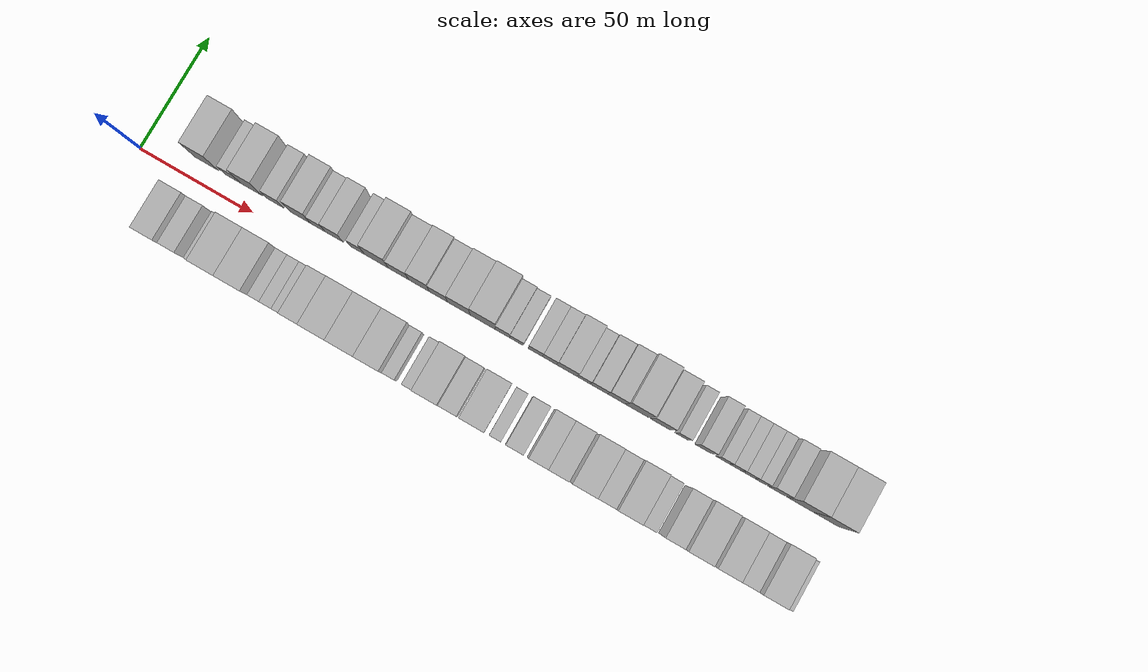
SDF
<sdf version="1.6">
 <world name="default">
  <scene>
   <sky><clouds><speed>12</speed></clouds></sky>
   <ambient>0.4 0.4 0.4 1</ambient>
   <background>0.7 0.7 0.7 1</background>
   <shadows>1</shadows>
  </scene>
  <gravity>0 0 -9.8066</gravity>
  <magnetic_field>6e-06 2.3e-05 -4.2e-05</magnetic_field>
  <physics default="0" name="default_physics" type="ode">
   <ode>
    <solver>
     <type>quick</type>
     <iters>10</iters>
     <sor>1.0</sor>
     <use_dynamic_moi_rescaling>0</use_dynamic_moi_rescaling>
    </solver>
    <constraints>
     <cfm>0</cfm>
     <erp>0.2</erp>
     <contact_max_correcting_vel>100</contact_max_correcting_vel>
     <contact_surface_layer>0.001</contact_surface_layer>
    </constraints>
   </ode>
   <max_step_size>0.004</max_step_size>
   <real_time_factor>1</real_time_factor>
   <real_time_update_rate>250</real_time_update_rate>
  </physics>
  <light name="sun" type="directional">
   <pose>0 0 10 0 0 0</pose>
   <diffuse>0.8 0.8 0.8 1</diffuse>
   <specular>0.2 0.2 0.2 1</specular>
   <attenuation>
    <range>1000</range>
    <constant>0.9</constant>
    <linear>0.01</linear>
    <quadratic>0.001</quadratic>
   </attenuation>
   <direction>-0.5 0.1 -0.9</direction>
  </light>
  <model name="building_1">
   <static>1</static>
   <pose>25.2201 17.5000 0 0.000000 0.000000 1.570796</pose>
   <link name="link">
    <pose>0 0 12.00 0 0 0</pose>
    <collision name="collision"><geometry><box><size>20.0000 10.4401 24.0000</size></box></geometry></collision>
    <visual name="visual">
     <cast_shadows>0</cast_shadows>
     <geometry><box><size>20.0000 10.4401 24.0000</size></box></geometry>
     <material>
      <script>
       <uri>model://HANNAS_wall/materials/scripts</uri>
       <uri>model://HANNAS_wall/materials/textures</uri>
       <name>vrc/HANNAS_wall</name>
      </script>
     </material>
    </visual>
   </link>
  </model>
  <model name="building_2">
   <static>1</static>
   <pose>36.8462 17.5000 0 0.000000 0.000000 1.570796</pose>
   <link name="link">
    <pose>0 0 7.50 0 0 0</pose>
    <collision name="collision"><geometry><box><size>20.0000 6.8121 15.0000</size></box></geometry></collision>
    <visual name="visual">
     <cast_shadows>0</cast_shadows>
     <geometry><box><size>20.0000 6.8121 15.0000</size></box></geometry>
     <material>
      <script>
       <uri>model://HANNAS_wall/materials/scripts</uri>
       <uri>model://HANNAS_wall/materials/textures</uri>
       <name>vrc/HANNAS_wall</name>
      </script>
     </material>
    </visual>
   </link>
  </model>
  <model name="building_3">
   <static>1</static>
   <pose>45.0765 17.5000 0 0.000000 0.000000 1.570796</pose>
   <link name="link">
    <pose>0 0 12.00 0 0 0</pose>
    <collision name="collision"><geometry><box><size>20.0000 9.6486 24.0000</size></box></geometry></collision>
    <visual name="visual">
     <cast_shadows>0</cast_shadows>
     <geometry><box><size>20.0000 9.6486 24.0000</size></box></geometry>
     <material>
      <script>
       <uri>model://HANNAS_wall/materials/scripts</uri>
       <uri>model://HANNAS_wall/materials/textures</uri>
       <name>vrc/HANNAS_wall</name>
      </script>
     </material>
    </visual>
   </link>
  </model>
  <model name="building_4">
   <static>1</static>
   <pose>55.5074 17.5000 0 0.000000 0.000000 1.570796</pose>
   <link name="link">
    <pose>0 0 7.50 0 0 0</pose>
    <collision name="collision"><geometry><box><size>20.0000 7.2132 15.0000</size></box></geometry></collision>
    <visual name="visual">
     <cast_shadows>0</cast_shadows>
     <geometry><box><size>20.0000 7.2132 15.0000</size></box></geometry>
     <material>
      <script>
       <uri>model://HANNAS_wall/materials/scripts</uri>
       <uri>model://HANNAS_wall/materials/textures</uri>
       <name>vrc/HANNAS_wall</name>
      </script>
     </material>
    </visual>
   </link>
  </model>
  <model name="building_5">
   <static>1</static>
   <pose>66.7522 17.5000 0 0.000000 0.000000 1.570796</pose>
   <link name="link">
    <pose>0 0 10.50 0 0 0</pose>
    <collision name="collision"><geometry><box><size>20.0000 9.2763 21.0000</size></box></geometry></collision>
    <visual name="visual">
     <cast_shadows>0</cast_shadows>
     <geometry><box><size>20.0000 9.2763 21.0000</size></box></geometry>
     <material>
      <script>
       <uri>model://HANNAS_wall/materials/scripts</uri>
       <uri>model://HANNAS_wall/materials/textures</uri>
       <name>vrc/HANNAS_wall</name>
      </script>
     </material>
    </visual>
   </link>
  </model>
  <model name="building_6">
   <static>1</static>
   <pose>74.5085 17.5000 0 0.000000 0.000000 1.570796</pose>
   <link name="link">
    <pose>0 0 7.50 0 0 0</pose>
    <collision name="collision"><geometry><box><size>20.0000 6.2364 15.0000</size></box></geometry></collision>
    <visual name="visual">
     <cast_shadows>0</cast_shadows>
     <geometry><box><size>20.0000 6.2364 15.0000</size></box></geometry>
     <material>
      <script>
       <uri>model://HANNAS_wall/materials/scripts</uri>
       <uri>model://HANNAS_wall/materials/textures</uri>
       <name>vrc/HANNAS_wall</name>
      </script>
     </material>
    </visual>
   </link>
  </model>
  <model name="building_7">
   <static>1</static>
   <pose>81.5345 17.5000 0 0.000000 0.000000 1.570796</pose>
   <link name="link">
    <pose>0 0 9.00 0 0 0</pose>
    <collision name="collision"><geometry><box><size>20.0000 7.8157 18.0000</size></box></geometry></collision>
    <visual name="visual">
     <cast_shadows>0</cast_shadows>
     <geometry><box><size>20.0000 7.8157 18.0000</size></box></geometry>
     <material>
      <script>
       <uri>model://HANNAS_wall/materials/scripts</uri>
       <uri>model://HANNAS_wall/materials/textures</uri>
       <name>vrc/HANNAS_wall</name>
      </script>
     </material>
    </visual>
   </link>
  </model>
  <model name="building_8">
   <static>1</static>
   <pose>91.6120 17.5000 0 0.000000 0.000000 1.570796</pose>
   <link name="link">
    <pose>0 0 7.50 0 0 0</pose>
    <collision name="collision"><geometry><box><size>20.0000 6.3393 15.0000</size></box></geometry></collision>
    <visual name="visual">
     <cast_shadows>0</cast_shadows>
     <geometry><box><size>20.0000 6.3393 15.0000</size></box></geometry>
     <material>
      <script>
       <uri>model://HANNAS_wall/materials/scripts</uri>
       <uri>model://HANNAS_wall/materials/textures</uri>
       <name>vrc/HANNAS_wall</name>
      </script>
     </material>
    </visual>
   </link>
  </model>
  <model name="building_9">
   <static>1</static>
   <pose>99.9844 17.5000 0 0.000000 0.000000 1.570796</pose>
   <link name="link">
    <pose>0 0 12.00 0 0 0</pose>
    <collision name="collision"><geometry><box><size>20.0000 10.4054 24.0000</size></box></geometry></collision>
    <visual name="visual">
     <cast_shadows>0</cast_shadows>
     <geometry><box><size>20.0000 10.4054 24.0000</size></box></geometry>
     <material>
      <script>
       <uri>model://HANNAS_wall/materials/scripts</uri>
       <uri>model://HANNAS_wall/materials/textures</uri>
       <name>vrc/HANNAS_wall</name>
      </script>
     </material>
    </visual>
   </link>
  </model>
  <model name="building_10">
   <static>1</static>
   <pose>109.5863 17.5000 0 0.000000 0.000000 1.570796</pose>
   <link name="link">
    <pose>0 0 9.00 0 0 0</pose>
    <collision name="collision"><geometry><box><size>20.0000 8.7986 18.0000</size></box></geometry></collision>
    <visual name="visual">
     <cast_shadows>0</cast_shadows>
     <geometry><box><size>20.0000 8.7986 18.0000</size></box></geometry>
     <material>
      <script>
       <uri>model://HANNAS_wall/materials/scripts</uri>
       <uri>model://HANNAS_wall/materials/textures</uri>
       <name>vrc/HANNAS_wall</name>
      </script>
     </material>
    </visual>
   </link>
  </model>
  <model name="building_11">
   <static>1</static>
   <pose>118.4237 17.5000 0 0.000000 0.000000 1.570796</pose>
   <link name="link">
    <pose>0 0 10.50 0 0 0</pose>
    <collision name="collision"><geometry><box><size>20.0000 8.8763 21.0000</size></box></geometry></collision>
    <visual name="visual">
     <cast_shadows>0</cast_shadows>
     <geometry><box><size>20.0000 8.8763 21.0000</size></box></geometry>
     <material>
      <script>
       <uri>model://HANNAS_wall/materials/scripts</uri>
       <uri>model://HANNAS_wall/materials/textures</uri>
       <name>vrc/HANNAS_wall</name>
      </script>
     </material>
    </visual>
   </link>
  </model>
  <model name="building_12">
   <static>1</static>
   <pose>126.8033 17.5000 0 0.000000 0.000000 1.570796</pose>
   <link name="link">
    <pose>0 0 9.00 0 0 0</pose>
    <collision name="collision"><geometry><box><size>20.0000 7.8829 18.0000</size></box></geometry></collision>
    <visual name="visual">
     <cast_shadows>0</cast_shadows>
     <geometry><box><size>20.0000 7.8829 18.0000</size></box></geometry>
     <material>
      <script>
       <uri>model://HANNAS_wall/materials/scripts</uri>
       <uri>model://HANNAS_wall/materials/textures</uri>
       <name>vrc/HANNAS_wall</name>
      </script>
     </material>
    </visual>
   </link>
  </model>
  <model name="building_13">
   <static>1</static>
   <pose>135.6129 17.5000 0 0.000000 0.000000 1.570796</pose>
   <link name="link">
    <pose>0 0 10.50 0 0 0</pose>
    <collision name="collision"><geometry><box><size>20.0000 9.7363 21.0000</size></box></geometry></collision>
    <visual name="visual">
     <cast_shadows>0</cast_shadows>
     <geometry><box><size>20.0000 9.7363 21.0000</size></box></geometry>
     <material>
      <script>
       <uri>model://HANNAS_wall/materials/scripts</uri>
       <uri>model://HANNAS_wall/materials/textures</uri>
       <name>vrc/HANNAS_wall</name>
      </script>
     </material>
    </visual>
   </link>
  </model>
  <model name="building_14">
   <static>1</static>
   <pose>145.8913 17.5000 0 0.000000 0.000000 1.570796</pose>
   <link name="link">
    <pose>0 0 12.00 0 0 0</pose>
    <collision name="collision"><geometry><box><size>20.0000 10.8204 24.0000</size></box></geometry></collision>
    <visual name="visual">
     <cast_shadows>0</cast_shadows>
     <geometry><box><size>20.0000 10.8204 24.0000</size></box></geometry>
     <material>
      <script>
       <uri>model://HANNAS_wall/materials/scripts</uri>
       <uri>model://HANNAS_wall/materials/textures</uri>
       <name>vrc/HANNAS_wall</name>
      </script>
     </material>
    </visual>
   </link>
  </model>
  <model name="building_15">
   <static>1</static>
   <pose>154.4302 17.5000 0 0.000000 0.000000 1.570796</pose>
   <link name="link">
    <pose>0 0 7.50 0 0 0</pose>
    <collision name="collision"><geometry><box><size>20.0000 6.2575 15.0000</size></box></geometry></collision>
    <visual name="visual">
     <cast_shadows>0</cast_shadows>
     <geometry><box><size>20.0000 6.2575 15.0000</size></box></geometry>
     <material>
      <script>
       <uri>model://HANNAS_wall/materials/scripts</uri>
       <uri>model://HANNAS_wall/materials/textures</uri>
       <name>vrc/HANNAS_wall</name>
      </script>
     </material>
    </visual>
   </link>
  </model>
  <model name="building_16">
   <static>1</static>
   <pose>160.4955 17.5000 0 0.000000 0.000000 1.570796</pose>
   <link name="link">
    <pose>0 0 6.00 0 0 0</pose>
    <collision name="collision"><geometry><box><size>20.0000 5.8731 12.0000</size></box></geometry></collision>
    <visual name="visual">
     <cast_shadows>0</cast_shadows>
     <geometry><box><size>20.0000 5.8731 12.0000</size></box></geometry>
     <material>
      <script>
       <uri>model://HANNAS_wall/materials/scripts</uri>
       <uri>model://HANNAS_wall/materials/textures</uri>
       <name>vrc/HANNAS_wall</name>
      </script>
     </material>
    </visual>
   </link>
  </model>
  <model name="building_17">
   <static>1</static>
   <pose>168.5329 17.5000 0 0.000000 0.000000 1.570796</pose>
   <link name="link">
    <pose>0 0 7.50 0 0 0</pose>
    <collision name="collision"><geometry><box><size>20.0000 6.2015 15.0000</size></box></geometry></collision>
    <visual name="visual">
     <cast_shadows>0</cast_shadows>
     <geometry><box><size>20.0000 6.2015 15.0000</size></box></geometry>
     <material>
      <script>
       <uri>model://HANNAS_wall/materials/scripts</uri>
       <uri>model://HANNAS_wall/materials/textures</uri>
       <name>vrc/HANNAS_wall</name>
      </script>
     </material>
    </visual>
   </link>
  </model>
  <model name="building_18">
   <static>1</static>
   <pose>174.6682 17.5000 0 0.000000 0.000000 1.570796</pose>
   <link name="link">
    <pose>0 0 7.50 0 0 0</pose>
    <collision name="collision"><geometry><box><size>20.0000 6.0692 15.0000</size></box></geometry></collision>
    <visual name="visual">
     <cast_shadows>0</cast_shadows>
     <geometry><box><size>20.0000 6.0692 15.0000</size></box></geometry>
     <material>
      <script>
       <uri>model://HANNAS_wall/materials/scripts</uri>
       <uri>model://HANNAS_wall/materials/textures</uri>
       <name>vrc/HANNAS_wall</name>
      </script>
     </material>
    </visual>
   </link>
  </model>
  <model name="building_19">
   <static>1</static>
   <pose>182.0090 17.5000 0 0.000000 0.000000 1.570796</pose>
   <link name="link">
    <pose>0 0 9.00 0 0 0</pose>
    <collision name="collision"><geometry><box><size>20.0000 8.6124 18.0000</size></box></geometry></collision>
    <visual name="visual">
     <cast_shadows>0</cast_shadows>
     <geometry><box><size>20.0000 8.6124 18.0000</size></box></geometry>
     <material>
      <script>
       <uri>model://HANNAS_wall/materials/scripts</uri>
       <uri>model://HANNAS_wall/materials/textures</uri>
       <name>vrc/HANNAS_wall</name>
      </script>
     </material>
    </visual>
   </link>
  </model>
  <model name="building_20">
   <static>1</static>
   <pose>189.1239 17.5000 0 0.000000 0.000000 1.570796</pose>
   <link name="link">
    <pose>0 0 6.00 0 0 0</pose>
    <collision name="collision"><geometry><box><size>20.0000 5.6175 12.0000</size></box></geometry></collision>
    <visual name="visual">
     <cast_shadows>0</cast_shadows>
     <geometry><box><size>20.0000 5.6175 12.0000</size></box></geometry>
     <material>
      <script>
       <uri>model://HANNAS_wall/materials/scripts</uri>
       <uri>model://HANNAS_wall/materials/textures</uri>
       <name>vrc/HANNAS_wall</name>
      </script>
     </material>
    </visual>
   </link>
  </model>
  <model name="building_21">
   <static>1</static>
   <pose>195.5637 17.5000 0 0.000000 0.000000 1.570796</pose>
   <link name="link">
    <pose>0 0 7.50 0 0 0</pose>
    <collision name="collision"><geometry><box><size>20.0000 7.2621 15.0000</size></box></geometry></collision>
    <visual name="visual">
     <cast_shadows>0</cast_shadows>
     <geometry><box><size>20.0000 7.2621 15.0000</size></box></geometry>
     <material>
      <script>
       <uri>model://HANNAS_wall/materials/scripts</uri>
       <uri>model://HANNAS_wall/materials/textures</uri>
       <name>vrc/HANNAS_wall</name>
      </script>
     </material>
    </visual>
   </link>
  </model>
  <model name="building_22">
   <static>1</static>
   <pose>203.0123 17.5000 0 0.000000 0.000000 1.570796</pose>
   <link name="link">
    <pose>0 0 9.00 0 0 0</pose>
    <collision name="collision"><geometry><box><size>20.0000 7.6352 18.0000</size></box></geometry></collision>
    <visual name="visual">
     <cast_shadows>0</cast_shadows>
     <geometry><box><size>20.0000 7.6352 18.0000</size></box></geometry>
     <material>
      <script>
       <uri>model://HANNAS_wall/materials/scripts</uri>
       <uri>model://HANNAS_wall/materials/textures</uri>
       <name>vrc/HANNAS_wall</name>
      </script>
     </material>
    </visual>
   </link>
  </model>
  <model name="building_23">
   <static>1</static>
   <pose>211.7698 17.5000 0 0.000000 0.000000 1.570796</pose>
   <link name="link">
    <pose>0 0 12.00 0 0 0</pose>
    <collision name="collision"><geometry><box><size>20.0000 9.8797 24.0000</size></box></geometry></collision>
    <visual name="visual">
     <cast_shadows>0</cast_shadows>
     <geometry><box><size>20.0000 9.8797 24.0000</size></box></geometry>
     <material>
      <script>
       <uri>model://HANNAS_wall/materials/scripts</uri>
       <uri>model://HANNAS_wall/materials/textures</uri>
       <name>vrc/HANNAS_wall</name>
      </script>
     </material>
    </visual>
   </link>
  </model>
  <model name="building_24">
   <static>1</static>
   <pose>221.9413 17.5000 0 0.000000 0.000000 1.570796</pose>
   <link name="link">
    <pose>0 0 9.00 0 0 0</pose>
    <collision name="collision"><geometry><box><size>20.0000 8.4632 18.0000</size></box></geometry></collision>
    <visual name="visual">
     <cast_shadows>0</cast_shadows>
     <geometry><box><size>20.0000 8.4632 18.0000</size></box></geometry>
     <material>
      <script>
       <uri>model://HANNAS_wall/materials/scripts</uri>
       <uri>model://HANNAS_wall/materials/textures</uri>
       <name>vrc/HANNAS_wall</name>
      </script>
     </material>
    </visual>
   </link>
  </model>
  <model name="building_25">
   <static>1</static>
   <pose>230.8725 17.5000 0 0.000000 0.000000 1.570796</pose>
   <link name="link">
    <pose>0 0 6.00 0 0 0</pose>
    <collision name="collision"><geometry><box><size>20.0000 5.3994 12.0000</size></box></geometry></collision>
    <visual name="visual">
     <cast_shadows>0</cast_shadows>
     <geometry><box><size>20.0000 5.3994 12.0000</size></box></geometry>
     <material>
      <script>
       <uri>model://HANNAS_wall/materials/scripts</uri>
       <uri>model://HANNAS_wall/materials/textures</uri>
       <name>vrc/HANNAS_wall</name>
      </script>
     </material>
    </visual>
   </link>
  </model>
  <model name="building_26">
   <static>1</static>
   <pose>240.0294 17.5000 0 0.000000 0.000000 1.570796</pose>
   <link name="link">
    <pose>0 0 7.50 0 0 0</pose>
    <collision name="collision"><geometry><box><size>20.0000 6.9145 15.0000</size></box></geometry></collision>
    <visual name="visual">
     <cast_shadows>0</cast_shadows>
     <geometry><box><size>20.0000 6.9145 15.0000</size></box></geometry>
     <material>
      <script>
       <uri>model://HANNAS_wall/materials/scripts</uri>
       <uri>model://HANNAS_wall/materials/textures</uri>
       <name>vrc/HANNAS_wall</name>
      </script>
     </material>
    </visual>
   </link>
  </model>
  <model name="building_27">
   <static>1</static>
   <pose>248.0906 17.5000 0 0.000000 0.000000 1.570796</pose>
   <link name="link">
    <pose>0 0 6.00 0 0 0</pose>
    <collision name="collision"><geometry><box><size>20.0000 5.2079 12.0000</size></box></geometry></collision>
    <visual name="visual">
     <cast_shadows>0</cast_shadows>
     <geometry><box><size>20.0000 5.2079 12.0000</size></box></geometry>
     <material>
      <script>
       <uri>model://HANNAS_wall/materials/scripts</uri>
       <uri>model://HANNAS_wall/materials/textures</uri>
       <name>vrc/HANNAS_wall</name>
      </script>
     </material>
    </visual>
   </link>
  </model>
  <model name="building_28">
   <static>1</static>
   <pose>253.2915 17.5000 0 0.000000 0.000000 1.570796</pose>
   <link name="link">
    <pose>0 0 6.00 0 0 0</pose>
    <collision name="collision"><geometry><box><size>20.0000 5.1938 12.0000</size></box></geometry></collision>
    <visual name="visual">
     <cast_shadows>0</cast_shadows>
     <geometry><box><size>20.0000 5.1938 12.0000</size></box></geometry>
     <material>
      <script>
       <uri>model://HANNAS_wall/materials/scripts</uri>
       <uri>model://HANNAS_wall/materials/textures</uri>
       <name>vrc/HANNAS_wall</name>
      </script>
     </material>
    </visual>
   </link>
  </model>
  <model name="building_29">
   <static>1</static>
   <pose>258.6236 17.5000 0 0.000000 0.000000 1.570796</pose>
   <link name="link">
    <pose>0 0 6.00 0 0 0</pose>
    <collision name="collision"><geometry><box><size>20.0000 5.4703 12.0000</size></box></geometry></collision>
    <visual name="visual">
     <cast_shadows>0</cast_shadows>
     <geometry><box><size>20.0000 5.4703 12.0000</size></box></geometry>
     <material>
      <script>
       <uri>model://HANNAS_wall/materials/scripts</uri>
       <uri>model://HANNAS_wall/materials/textures</uri>
       <name>vrc/HANNAS_wall</name>
      </script>
     </material>
    </visual>
   </link>
  </model>
  <model name="building_30">
   <static>1</static>
   <pose>263.7589 17.5000 0 0.000000 0.000000 1.570796</pose>
   <link name="link">
    <pose>0 0 6.00 0 0 0</pose>
    <collision name="collision"><geometry><box><size>20.0000 4.8003 12.0000</size></box></geometry></collision>
    <visual name="visual">
     <cast_shadows>0</cast_shadows>
     <geometry><box><size>20.0000 4.8003 12.0000</size></box></geometry>
     <material>
      <script>
       <uri>model://HANNAS_wall/materials/scripts</uri>
       <uri>model://HANNAS_wall/materials/textures</uri>
       <name>vrc/HANNAS_wall</name>
      </script>
     </material>
    </visual>
   </link>
  </model>
  <model name="building_31">
   <static>1</static>
   <pose>270.6630 17.5000 0 0.000000 0.000000 1.570796</pose>
   <link name="link">
    <pose>0 0 7.50 0 0 0</pose>
    <collision name="collision"><geometry><box><size>20.0000 7.0080 15.0000</size></box></geometry></collision>
    <visual name="visual">
     <cast_shadows>0</cast_shadows>
     <geometry><box><size>20.0000 7.0080 15.0000</size></box></geometry>
     <material>
      <script>
       <uri>model://HANNAS_wall/materials/scripts</uri>
       <uri>model://HANNAS_wall/materials/textures</uri>
       <name>vrc/HANNAS_wall</name>
      </script>
     </material>
    </visual>
   </link>
  </model>
  <model name="building_32">
   <static>1</static>
   <pose>280.6449 17.5000 0 0.000000 0.000000 1.570796</pose>
   <link name="link">
    <pose>0 0 12.00 0 0 0</pose>
    <collision name="collision"><geometry><box><size>20.0000 10.9557 24.0000</size></box></geometry></collision>
    <visual name="visual">
     <cast_shadows>0</cast_shadows>
     <geometry><box><size>20.0000 10.9557 24.0000</size></box></geometry>
     <material>
      <script>
       <uri>model://HANNAS_wall/materials/scripts</uri>
       <uri>model://HANNAS_wall/materials/textures</uri>
       <name>vrc/HANNAS_wall</name>
      </script>
     </material>
    </visual>
   </link>
  </model>
  <model name="building_33">
   <static>1</static>
   <pose>291.5715 17.5000 0 0.000000 0.000000 1.570796</pose>
   <link name="link">
    <pose>0 0 12.00 0 0 0</pose>
    <collision name="collision"><geometry><box><size>20.0000 10.8976 24.0000</size></box></geometry></collision>
    <visual name="visual">
     <cast_shadows>0</cast_shadows>
     <geometry><box><size>20.0000 10.8976 24.0000</size></box></geometry>
     <material>
      <script>
       <uri>model://HANNAS_wall/materials/scripts</uri>
       <uri>model://HANNAS_wall/materials/textures</uri>
       <name>vrc/HANNAS_wall</name>
      </script>
     </material>
    </visual>
   </link>
  </model>
  <model name="building_34">
   <static>1</static>
   <pose>24.7393 -17.5000 0 0.000000 0.000000 1.570796</pose>
   <link name="link">
    <pose>0 0 10.50 0 0 0</pose>
    <collision name="collision"><geometry><box><size>20.0000 9.4786 21.0000</size></box></geometry></collision>
    <visual name="visual">
     <cast_shadows>0</cast_shadows>
     <geometry><box><size>20.0000 9.4786 21.0000</size></box></geometry>
     <material>
      <script>
       <uri>model://HANNAS_wall/materials/scripts</uri>
       <uri>model://HANNAS_wall/materials/textures</uri>
       <name>vrc/HANNAS_wall</name>
      </script>
     </material>
    </visual>
   </link>
  </model>
  <model name="building_35">
   <static>1</static>
   <pose>33.1254 -17.5000 0 0.000000 0.000000 1.570796</pose>
   <link name="link">
    <pose>0 0 7.50 0 0 0</pose>
    <collision name="collision"><geometry><box><size>20.0000 7.2936 15.0000</size></box></geometry></collision>
    <visual name="visual">
     <cast_shadows>0</cast_shadows>
     <geometry><box><size>20.0000 7.2936 15.0000</size></box></geometry>
     <material>
      <script>
       <uri>model://HANNAS_wall/materials/scripts</uri>
       <uri>model://HANNAS_wall/materials/textures</uri>
       <name>vrc/HANNAS_wall</name>
      </script>
     </material>
    </visual>
   </link>
  </model>
  <model name="building_36">
   <static>1</static>
   <pose>42.2683 -17.5000 0 0.000000 0.000000 1.570796</pose>
   <link name="link">
    <pose>0 0 6.00 0 0 0</pose>
    <collision name="collision"><geometry><box><size>20.0000 4.9922 12.0000</size></box></geometry></collision>
    <visual name="visual">
     <cast_shadows>0</cast_shadows>
     <geometry><box><size>20.0000 4.9922 12.0000</size></box></geometry>
     <material>
      <script>
       <uri>model://HANNAS_wall/materials/scripts</uri>
       <uri>model://HANNAS_wall/materials/textures</uri>
       <name>vrc/HANNAS_wall</name>
      </script>
     </material>
    </visual>
   </link>
  </model>
  <model name="building_37">
   <static>1</static>
   <pose>50.3592 -17.5000 0 0.000000 0.000000 1.570796</pose>
   <link name="link">
    <pose>0 0 12.00 0 0 0</pose>
    <collision name="collision"><geometry><box><size>20.0000 11.1895 24.0000</size></box></geometry></collision>
    <visual name="visual">
     <cast_shadows>0</cast_shadows>
     <geometry><box><size>20.0000 11.1895 24.0000</size></box></geometry>
     <material>
      <script>
       <uri>model://HANNAS_wall/materials/scripts</uri>
       <uri>model://HANNAS_wall/materials/textures</uri>
       <name>vrc/HANNAS_wall</name>
      </script>
     </material>
    </visual>
   </link>
  </model>
  <model name="building_38">
   <static>1</static>
   <pose>61.4676 -17.5000 0 0.000000 0.000000 1.570796</pose>
   <link name="link">
    <pose>0 0 12.00 0 0 0</pose>
    <collision name="collision"><geometry><box><size>20.0000 11.0274 24.0000</size></box></geometry></collision>
    <visual name="visual">
     <cast_shadows>0</cast_shadows>
     <geometry><box><size>20.0000 11.0274 24.0000</size></box></geometry>
     <material>
      <script>
       <uri>model://HANNAS_wall/materials/scripts</uri>
       <uri>model://HANNAS_wall/materials/textures</uri>
       <name>vrc/HANNAS_wall</name>
      </script>
     </material>
    </visual>
   </link>
  </model>
  <model name="building_39">
   <static>1</static>
   <pose>69.5088 -17.5000 0 0.000000 0.000000 1.570796</pose>
   <link name="link">
    <pose>0 0 6.00 0 0 0</pose>
    <collision name="collision"><geometry><box><size>20.0000 5.0548 12.0000</size></box></geometry></collision>
    <visual name="visual">
     <cast_shadows>0</cast_shadows>
     <geometry><box><size>20.0000 5.0548 12.0000</size></box></geometry>
     <material>
      <script>
       <uri>model://HANNAS_wall/materials/scripts</uri>
       <uri>model://HANNAS_wall/materials/textures</uri>
       <name>vrc/HANNAS_wall</name>
      </script>
     </material>
    </visual>
   </link>
  </model>
  <model name="building_40">
   <static>1</static>
   <pose>74.6196 -17.5000 0 0.000000 0.000000 1.570796</pose>
   <link name="link">
    <pose>0 0 6.00 0 0 0</pose>
    <collision name="collision"><geometry><box><size>20.0000 5.1668 12.0000</size></box></geometry></collision>
    <visual name="visual">
     <cast_shadows>0</cast_shadows>
     <geometry><box><size>20.0000 5.1668 12.0000</size></box></geometry>
     <material>
      <script>
       <uri>model://HANNAS_wall/materials/scripts</uri>
       <uri>model://HANNAS_wall/materials/textures</uri>
       <name>vrc/HANNAS_wall</name>
      </script>
     </material>
    </visual>
   </link>
  </model>
  <model name="building_41">
   <static>1</static>
   <pose>79.6351 -17.5000 0 0.000000 0.000000 1.570796</pose>
   <link name="link">
    <pose>0 0 6.00 0 0 0</pose>
    <collision name="collision"><geometry><box><size>20.0000 4.8643 12.0000</size></box></geometry></collision>
    <visual name="visual">
     <cast_shadows>0</cast_shadows>
     <geometry><box><size>20.0000 4.8643 12.0000</size></box></geometry>
     <material>
      <script>
       <uri>model://HANNAS_wall/materials/scripts</uri>
       <uri>model://HANNAS_wall/materials/textures</uri>
       <name>vrc/HANNAS_wall</name>
      </script>
     </material>
    </visual>
   </link>
  </model>
  <model name="building_42">
   <static>1</static>
   <pose>86.3473 -17.5000 0 0.000000 0.000000 1.570796</pose>
   <link name="link">
    <pose>0 0 10.50 0 0 0</pose>
    <collision name="collision"><geometry><box><size>20.0000 8.5601 21.0000</size></box></geometry></collision>
    <visual name="visual">
     <cast_shadows>0</cast_shadows>
     <geometry><box><size>20.0000 8.5601 21.0000</size></box></geometry>
     <material>
      <script>
       <uri>model://HANNAS_wall/materials/scripts</uri>
       <uri>model://HANNAS_wall/materials/textures</uri>
       <name>vrc/HANNAS_wall</name>
      </script>
     </material>
    </visual>
   </link>
  </model>
  <model name="building_43">
   <static>1</static>
   <pose>96.2405 -17.5000 0 0.000000 0.000000 1.570796</pose>
   <link name="link">
    <pose>0 0 12.00 0 0 0</pose>
    <collision name="collision"><geometry><box><size>20.0000 11.2264 24.0000</size></box></geometry></collision>
    <visual name="visual">
     <cast_shadows>0</cast_shadows>
     <geometry><box><size>20.0000 11.2264 24.0000</size></box></geometry>
     <material>
      <script>
       <uri>model://HANNAS_wall/materials/scripts</uri>
       <uri>model://HANNAS_wall/materials/textures</uri>
       <name>vrc/HANNAS_wall</name>
      </script>
     </material>
    </visual>
   </link>
  </model>
  <model name="building_44">
   <static>1</static>
   <pose>107.6742 -17.5000 0 0.000000 0.000000 1.570796</pose>
   <link name="link">
    <pose>0 0 12.00 0 0 0</pose>
    <collision name="collision"><geometry><box><size>20.0000 11.6410 24.0000</size></box></geometry></collision>
    <visual name="visual">
     <cast_shadows>0</cast_shadows>
     <geometry><box><size>20.0000 11.6410 24.0000</size></box></geometry>
     <material>
      <script>
       <uri>model://HANNAS_wall/materials/scripts</uri>
       <uri>model://HANNAS_wall/materials/textures</uri>
       <name>vrc/HANNAS_wall</name>
      </script>
     </material>
    </visual>
   </link>
  </model>
  <model name="building_45">
   <static>1</static>
   <pose>118.7395 -17.5000 0 0.000000 0.000000 1.570796</pose>
   <link name="link">
    <pose>0 0 12.00 0 0 0</pose>
    <collision name="collision"><geometry><box><size>20.0000 10.4897 24.0000</size></box></geometry></collision>
    <visual name="visual">
     <cast_shadows>0</cast_shadows>
     <geometry><box><size>20.0000 10.4897 24.0000</size></box></geometry>
     <material>
      <script>
       <uri>model://HANNAS_wall/materials/scripts</uri>
       <uri>model://HANNAS_wall/materials/textures</uri>
       <name>vrc/HANNAS_wall</name>
      </script>
     </material>
    </visual>
   </link>
  </model>
  <model name="building_46">
   <static>1</static>
   <pose>126.6386 -17.5000 0 0.000000 0.000000 1.570796</pose>
   <link name="link">
    <pose>0 0 6.00 0 0 0</pose>
    <collision name="collision"><geometry><box><size>20.0000 5.3085 12.0000</size></box></geometry></collision>
    <visual name="visual">
     <cast_shadows>0</cast_shadows>
     <geometry><box><size>20.0000 5.3085 12.0000</size></box></geometry>
     <material>
      <script>
       <uri>model://HANNAS_wall/materials/scripts</uri>
       <uri>model://HANNAS_wall/materials/textures</uri>
       <name>vrc/HANNAS_wall</name>
      </script>
     </material>
    </visual>
   </link>
  </model>
  <model name="building_47">
   <static>1</static>
   <pose>134.8199 -17.5000 0 0.000000 0.000000 1.570796</pose>
   <link name="link">
    <pose>0 0 6.00 0 0 0</pose>
    <collision name="collision"><geometry><box><size>20.0000 5.0542 12.0000</size></box></geometry></collision>
    <visual name="visual">
     <cast_shadows>0</cast_shadows>
     <geometry><box><size>20.0000 5.0542 12.0000</size></box></geometry>
     <material>
      <script>
       <uri>model://HANNAS_wall/materials/scripts</uri>
       <uri>model://HANNAS_wall/materials/textures</uri>
       <name>vrc/HANNAS_wall</name>
      </script>
     </material>
    </visual>
   </link>
  </model>
  <model name="building_48">
   <static>1</static>
   <pose>142.5637 -17.5000 0 0.000000 0.000000 1.570796</pose>
   <link name="link">
    <pose>0 0 12.00 0 0 0</pose>
    <collision name="collision"><geometry><box><size>20.0000 10.4333 24.0000</size></box></geometry></collision>
    <visual name="visual">
     <cast_shadows>0</cast_shadows>
     <geometry><box><size>20.0000 10.4333 24.0000</size></box></geometry>
     <material>
      <script>
       <uri>model://HANNAS_wall/materials/scripts</uri>
       <uri>model://HANNAS_wall/materials/textures</uri>
       <name>vrc/HANNAS_wall</name>
      </script>
     </material>
    </visual>
   </link>
  </model>
  <model name="building_49">
   <static>1</static>
   <pose>151.6746 -17.5000 0 0.000000 0.000000 1.570796</pose>
   <link name="link">
    <pose>0 0 9.00 0 0 0</pose>
    <collision name="collision"><geometry><box><size>20.0000 7.7886 18.0000</size></box></geometry></collision>
    <visual name="visual">
     <cast_shadows>0</cast_shadows>
     <geometry><box><size>20.0000 7.7886 18.0000</size></box></geometry>
     <material>
      <script>
       <uri>model://HANNAS_wall/materials/scripts</uri>
       <uri>model://HANNAS_wall/materials/textures</uri>
       <name>vrc/HANNAS_wall</name>
      </script>
     </material>
    </visual>
   </link>
  </model>
  <model name="building_50">
   <static>1</static>
   <pose>161.7617 -17.5000 0 0.000000 0.000000 1.570796</pose>
   <link name="link">
    <pose>0 0 10.50 0 0 0</pose>
    <collision name="collision"><geometry><box><size>20.0000 10.3857 21.0000</size></box></geometry></collision>
    <visual name="visual">
     <cast_shadows>0</cast_shadows>
     <geometry><box><size>20.0000 10.3857 21.0000</size></box></geometry>
     <material>
      <script>
       <uri>model://HANNAS_wall/materials/scripts</uri>
       <uri>model://HANNAS_wall/materials/textures</uri>
       <name>vrc/HANNAS_wall</name>
      </script>
     </material>
    </visual>
   </link>
  </model>
  <model name="building_51">
   <static>1</static>
   <pose>171.4045 -17.5000 0 0.000000 0.000000 1.570796</pose>
   <link name="link">
    <pose>0 0 6.00 0 0 0</pose>
    <collision name="collision"><geometry><box><size>20.0000 4.8998 12.0000</size></box></geometry></collision>
    <visual name="visual">
     <cast_shadows>0</cast_shadows>
     <geometry><box><size>20.0000 4.8998 12.0000</size></box></geometry>
     <material>
      <script>
       <uri>model://HANNAS_wall/materials/scripts</uri>
       <uri>model://HANNAS_wall/materials/textures</uri>
       <name>vrc/HANNAS_wall</name>
      </script>
     </material>
    </visual>
   </link>
  </model>
  <model name="building_52">
   <static>1</static>
   <pose>179.5244 -17.5000 0 0.000000 0.000000 1.570796</pose>
   <link name="link">
    <pose>0 0 7.50 0 0 0</pose>
    <collision name="collision"><geometry><box><size>20.0000 7.3400 15.0000</size></box></geometry></collision>
    <visual name="visual">
     <cast_shadows>0</cast_shadows>
     <geometry><box><size>20.0000 7.3400 15.0000</size></box></geometry>
     <material>
      <script>
       <uri>model://HANNAS_wall/materials/scripts</uri>
       <uri>model://HANNAS_wall/materials/textures</uri>
       <name>vrc/HANNAS_wall</name>
      </script>
     </material>
    </visual>
   </link>
  </model>
  <model name="building_53">
   <static>1</static>
   <pose>189.2536 -17.5000 0 0.000000 0.000000 1.570796</pose>
   <link name="link">
    <pose>0 0 9.00 0 0 0</pose>
    <collision name="collision"><geometry><box><size>20.0000 8.1184 18.0000</size></box></geometry></collision>
    <visual name="visual">
     <cast_shadows>0</cast_shadows>
     <geometry><box><size>20.0000 8.1184 18.0000</size></box></geometry>
     <material>
      <script>
       <uri>model://HANNAS_wall/materials/scripts</uri>
       <uri>model://HANNAS_wall/materials/textures</uri>
       <name>vrc/HANNAS_wall</name>
      </script>
     </material>
    </visual>
   </link>
  </model>
  <model name="building_54">
   <static>1</static>
   <pose>197.5717 -17.5000 0 0.000000 0.000000 1.570796</pose>
   <link name="link">
    <pose>0 0 9.00 0 0 0</pose>
    <collision name="collision"><geometry><box><size>20.0000 8.5179 18.0000</size></box></geometry></collision>
    <visual name="visual">
     <cast_shadows>0</cast_shadows>
     <geometry><box><size>20.0000 8.5179 18.0000</size></box></geometry>
     <material>
      <script>
       <uri>model://HANNAS_wall/materials/scripts</uri>
       <uri>model://HANNAS_wall/materials/textures</uri>
       <name>vrc/HANNAS_wall</name>
      </script>
     </material>
    </visual>
   </link>
  </model>
  <model name="building_55">
   <static>1</static>
   <pose>207.9827 -17.5000 0 0.000000 0.000000 1.570796</pose>
   <link name="link">
    <pose>0 0 10.50 0 0 0</pose>
    <collision name="collision"><geometry><box><size>20.0000 10.3041 21.0000</size></box></geometry></collision>
    <visual name="visual">
     <cast_shadows>0</cast_shadows>
     <geometry><box><size>20.0000 10.3041 21.0000</size></box></geometry>
     <material>
      <script>
       <uri>model://HANNAS_wall/materials/scripts</uri>
       <uri>model://HANNAS_wall/materials/textures</uri>
       <name>vrc/HANNAS_wall</name>
      </script>
     </material>
    </visual>
   </link>
  </model>
  <model name="building_56">
   <static>1</static>
   <pose>217.0427 -17.5000 0 0.000000 0.000000 1.570796</pose>
   <link name="link">
    <pose>0 0 9.00 0 0 0</pose>
    <collision name="collision"><geometry><box><size>20.0000 7.8159 18.0000</size></box></geometry></collision>
    <visual name="visual">
     <cast_shadows>0</cast_shadows>
     <geometry><box><size>20.0000 7.8159 18.0000</size></box></geometry>
     <material>
      <script>
       <uri>model://HANNAS_wall/materials/scripts</uri>
       <uri>model://HANNAS_wall/materials/textures</uri>
       <name>vrc/HANNAS_wall</name>
      </script>
     </material>
    </visual>
   </link>
  </model>
  <model name="building_57">
   <static>1</static>
   <pose>225.9451 -17.5000 0 0.000000 0.000000 1.570796</pose>
   <link name="link">
    <pose>0 0 12.00 0 0 0</pose>
    <collision name="collision"><geometry><box><size>20.0000 9.9888 24.0000</size></box></geometry></collision>
    <visual name="visual">
     <cast_shadows>0</cast_shadows>
     <geometry><box><size>20.0000 9.9888 24.0000</size></box></geometry>
     <material>
      <script>
       <uri>model://HANNAS_wall/materials/scripts</uri>
       <uri>model://HANNAS_wall/materials/textures</uri>
       <name>vrc/HANNAS_wall</name>
      </script>
     </material>
    </visual>
   </link>
  </model>
  <model name="building_58">
   <static>1</static>
   <pose>234.3586 -17.5000 0 0.000000 0.000000 1.570796</pose>
   <link name="link">
    <pose>0 0 7.50 0 0 0</pose>
    <collision name="collision"><geometry><box><size>20.0000 6.8383 15.0000</size></box></geometry></collision>
    <visual name="visual">
     <cast_shadows>0</cast_shadows>
     <geometry><box><size>20.0000 6.8383 15.0000</size></box></geometry>
     <material>
      <script>
       <uri>model://HANNAS_wall/materials/scripts</uri>
       <uri>model://HANNAS_wall/materials/textures</uri>
       <name>vrc/HANNAS_wall</name>
      </script>
     </material>
    </visual>
   </link>
  </model>
  <model name="building_59">
   <static>1</static>
   <pose>244.8322 -17.5000 0 0.000000 0.000000 1.570796</pose>
   <link name="link">
    <pose>0 0 9.00 0 0 0</pose>
    <collision name="collision"><geometry><box><size>20.0000 8.1090 18.0000</size></box></geometry></collision>
    <visual name="visual">
     <cast_shadows>0</cast_shadows>
     <geometry><box><size>20.0000 8.1090 18.0000</size></box></geometry>
     <material>
      <script>
       <uri>model://HANNAS_wall/materials/scripts</uri>
       <uri>model://HANNAS_wall/materials/textures</uri>
       <name>vrc/HANNAS_wall</name>
      </script>
     </material>
    </visual>
   </link>
  </model>
  <model name="building_60">
   <static>1</static>
   <pose>254.0389 -17.5000 0 0.000000 0.000000 1.570796</pose>
   <link name="link">
    <pose>0 0 12.00 0 0 0</pose>
    <collision name="collision"><geometry><box><size>20.0000 10.3044 24.0000</size></box></geometry></collision>
    <visual name="visual">
     <cast_shadows>0</cast_shadows>
     <geometry><box><size>20.0000 10.3044 24.0000</size></box></geometry>
     <material>
      <script>
       <uri>model://HANNAS_wall/materials/scripts</uri>
       <uri>model://HANNAS_wall/materials/textures</uri>
       <name>vrc/HANNAS_wall</name>
      </script>
     </material>
    </visual>
   </link>
  </model>
  <model name="building_61">
   <static>1</static>
   <pose>265.9909 -17.5000 0 0.000000 0.000000 1.570796</pose>
   <link name="link">
    <pose>0 0 10.50 0 0 0</pose>
    <collision name="collision"><geometry><box><size>20.0000 9.5996 21.0000</size></box></geometry></collision>
    <visual name="visual">
     <cast_shadows>0</cast_shadows>
     <geometry><box><size>20.0000 9.5996 21.0000</size></box></geometry>
     <material>
      <script>
       <uri>model://HANNAS_wall/materials/scripts</uri>
       <uri>model://HANNAS_wall/materials/textures</uri>
       <name>vrc/HANNAS_wall</name>
      </script>
     </material>
    </visual>
   </link>
  </model>
  <model name="building_62">
   <static>1</static>
   <pose>274.6009 -17.5000 0 0.000000 0.000000 1.570796</pose>
   <link name="link">
    <pose>0 0 9.00 0 0 0</pose>
    <collision name="collision"><geometry><box><size>20.0000 7.6203 18.0000</size></box></geometry></collision>
    <visual name="visual">
     <cast_shadows>0</cast_shadows>
     <geometry><box><size>20.0000 7.6203 18.0000</size></box></geometry>
     <material>
      <script>
       <uri>model://HANNAS_wall/materials/scripts</uri>
       <uri>model://HANNAS_wall/materials/textures</uri>
       <name>vrc/HANNAS_wall</name>
      </script>
     </material>
    </visual>
   </link>
  </model>
  <model name="building_63">
   <static>1</static>
   <pose>283.4359 -17.5000 0 0.000000 0.000000 1.570796</pose>
   <link name="link">
    <pose>0 0 12.00 0 0 0</pose>
    <collision name="collision"><geometry><box><size>20.0000 10.0497 24.0000</size></box></geometry></collision>
    <visual name="visual">
     <cast_shadows>0</cast_shadows>
     <geometry><box><size>20.0000 10.0497 24.0000</size></box></geometry>
     <material>
      <script>
       <uri>model://HANNAS_wall/materials/scripts</uri>
       <uri>model://HANNAS_wall/materials/textures</uri>
       <name>vrc/HANNAS_wall</name>
      </script>
     </material>
    </visual>
   </link>
  </model>
  <model name="building_64">
   <static>1</static>
   <pose>290.9899 -17.5000 0 0.000000 0.000000 1.570796</pose>
   <link name="link">
    <pose>0 0 6.00 0 0 0</pose>
    <collision name="collision"><geometry><box><size>20.0000 5.0582 12.0000</size></box></geometry></collision>
    <visual name="visual">
     <cast_shadows>0</cast_shadows>
     <geometry><box><size>20.0000 5.0582 12.0000</size></box></geometry>
     <material>
      <script>
       <uri>model://HANNAS_wall/materials/scripts</uri>
       <uri>model://HANNAS_wall/materials/textures</uri>
       <name>vrc/HANNAS_wall</name>
      </script>
     </material>
    </visual>
   </link>
  </model>
 </world>
</sdf>
